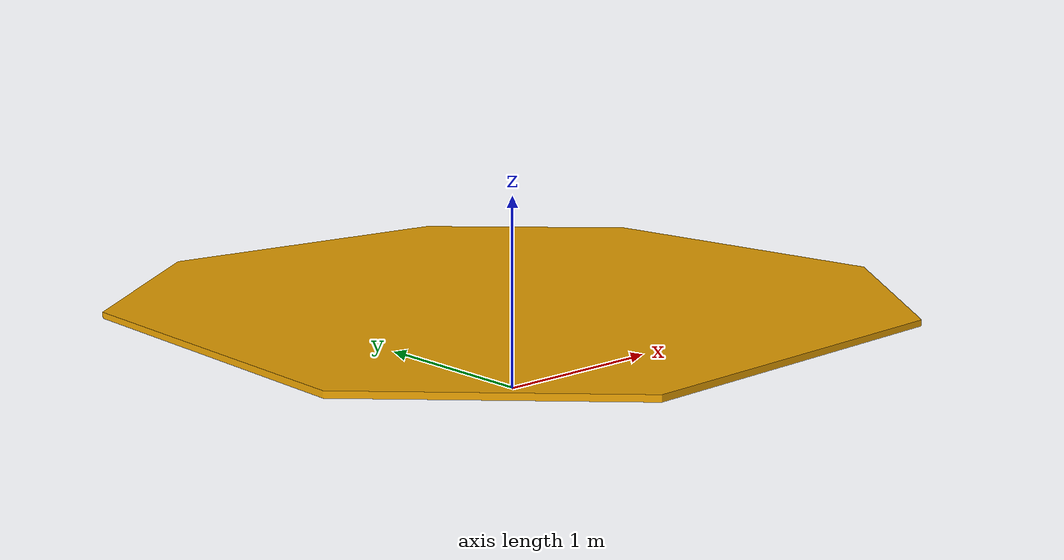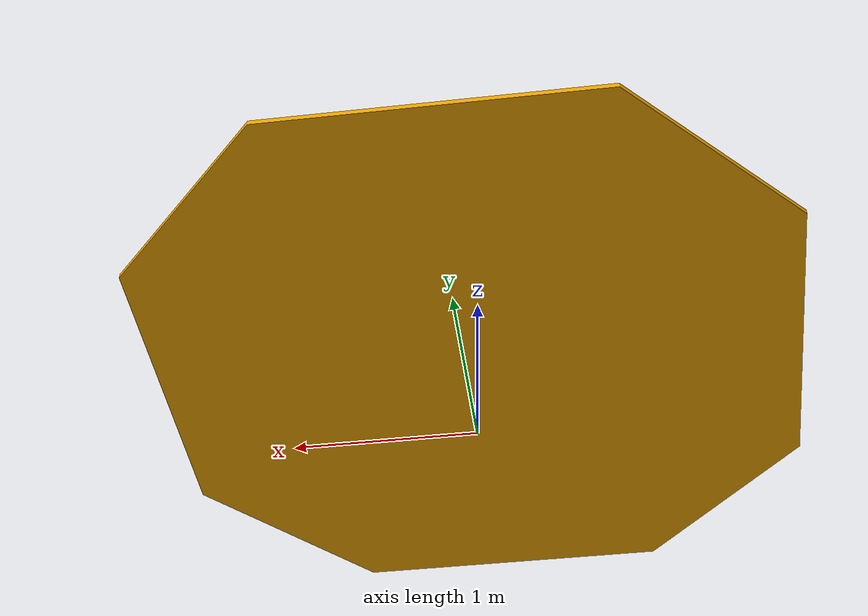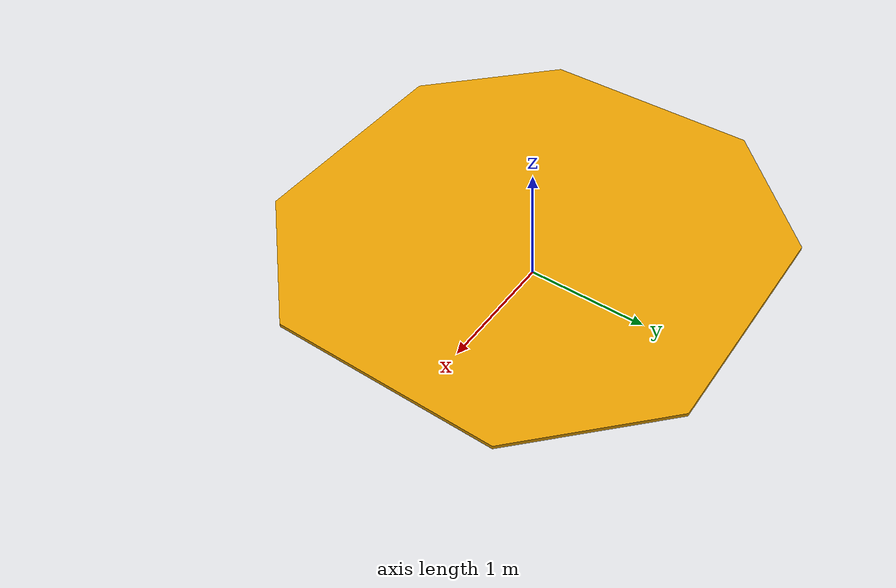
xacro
<?xml version="1.0"?>
<robot name="large_ring" xmlns:xacro="http://www.ros.org/wiki/xacro">
  <xacro:include filename="./large_ring.gazebo" />
  <xacro:macro name="large_ring">
    <link name="ring_link">
      <collision>
        <origin xyz="0 0 -0.97" rpy="0 0 0" />
        <geometry>
          <mesh filename="package://kuroko_description/meshes/roboone_ring/stl/large_ring.stl" />
        </geometry>
      </collision>
      <visual>
        <origin xyz="0 0 0" rpy="0 0 0" />
        <geometry>
          <mesh filename="package://kuroko_description/meshes/roboone_ring/obj/large_ring.obj" />
        </geometry>
      </visual>
      <inertial>
        <mass value="484.78500000" />
        <origin xyz="0 0 0.01500000" rpy="0 0 0" />
        <inertia
          ixx="439.45933388"
          ixy="0.00000000" iyy="439.45933388"
          ixz="0.00000000" iyz="0.00000000" izz="878.84595000" />
      </inertial>
    </link>
  </xacro:macro>

  <xacro:large_ring />
  <xacro:large_ring_gazebo />
</robot>

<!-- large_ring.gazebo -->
<robot xmlns:xacro="http://www.ros.org/wiki/xacro">
  <xacro:include filename="$(find kuroko_description)/xacro/physics/default_gazebo_params.xacro" />
  <xacro:macro name="large_ring_gazebo">
    <link name="world" />
    <joint name="world_joint" type="fixed">
      <origin xyz="0 0 0.5" rpy="0 0 0" />
      <parent link="world" />
      <child link="ring_link" />
    </joint>
    <gazebo reference="world_joint">
      <disableFixedJointLumping>true</disableFixedJointLumping>
      <preserveFixedJoint>true</preserveFixedJoint>
    </gazebo>
    <gazebo reference="ring_link">
      <kp>100000.0</kp>
      <kd>100.0</kd>
      <mu1>1000</mu1>
      <maxVel>1.0</maxVel>
      <minDepth>0.0</minDepth>
      <maxContacts>20</maxContacts>
      <selfCollide>true</selfCollide>
      <dampingFactor>0.0</dampingFactor>
    </gazebo>
    <gazebo>
      <static>true</static>
    </gazebo>
  </xacro:macro>
</robot>
